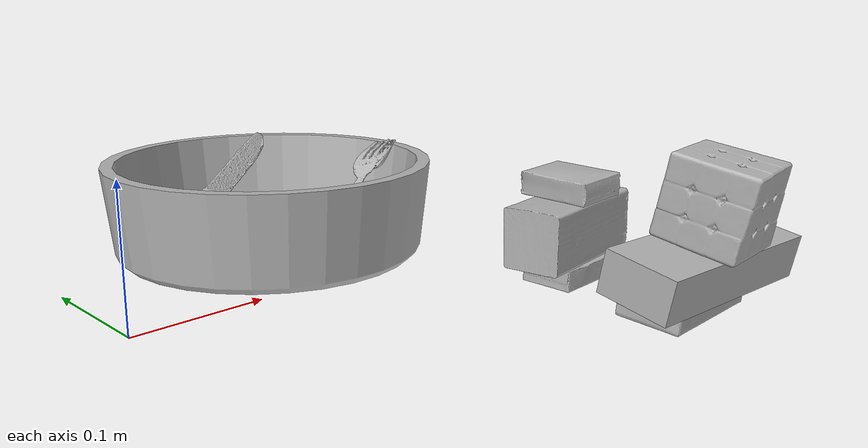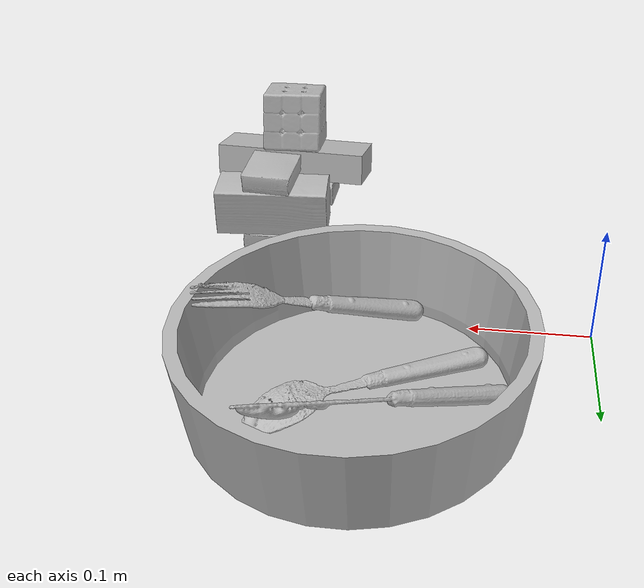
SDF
<?xml version="1.0" ?>
<sdf version="1.4">
  <world name="default">
    <light name="light1" type="point">
      <pose>0 0 1 0 0 0</pose>
      <diffuse>3 3 3 1</diffuse>
      <specular>3 3 3 1</specular>
    </light>
    <light name="light2" type="point">
      <pose>0 0.5 2 0 0 0</pose>
      <diffuse>1 1 1 1</diffuse>
      <specular>1 1 1 1</specular>
    </light>
    <light name="light3" type="point">
      <pose>0 0.5 2 0 0 0</pose>
      <diffuse>3 3 3 1</diffuse>
      <specular>3 3 3 1</specular>
    </light>
    <scene>
      <ambient>0.7 0.7 0.7</ambient>
    </scene>
    <model name="box11">
      <link name="link_box11">
        <collision name="default">
          <geometry>
            <mesh>
              <uri>model://cracker_box/collision_meshes/collision.obj</uri>
              <scale>0.25 0.25 0.25</scale>
            </mesh>
          </geometry>
          <surface>
            <friction>
              <ode>
                <mu>0.5</mu>
                <mu2>0.5</mu2>
              </ode>
            </friction>
          </surface>
        </collision>
        <visual name="default">
          <geometry>
            <mesh>
              <uri>model://cracker_box/visual_meshes/visual.dae</uri>
              <scale>0.25 0.25 0.25</scale>
            </mesh>
          </geometry>
        </visual>
        <inertial>
          <mass>0.04448898881673813</mass>
          <pose>0.00023660270380787551 6.358561950037256e-05 -0.000425738311605528 -0.00031620780372907927 -0.011106488668730609 0.002546795468482302</pose>
          <inertia>
            <ixx>7.0725087e-06</ixx>
            <iyy>1.1678099e-05</iyy>
            <izz>1.666572e-05</izz>
            <ixy>0</ixy>
            <ixz>0</ixz>
            <iyz>0</iyz>
          </inertia>
        </inertial>
      </link>
      <pose>0.28993144631385803 -0.11982575058937073 0.009121435694396496 -0.011962920095356235 -0.007375113182440322 0.0002992505632947396</pose>
    </model>
    <model name="box12">
      <link name="link_box12">
        <collision name="default">
          <geometry>
            <mesh>
              <uri>model://wood_block/collision_meshes/collision.obj</uri>
              <scale>0.5 0.5 0.5</scale>
            </mesh>
          </geometry>
          <surface>
            <friction>
              <ode>
                <mu>0.5</mu>
                <mu2>0.5</mu2>
              </ode>
            </friction>
          </surface>
        </collision>
        <visual name="default">
          <geometry>
            <mesh>
              <uri>model://wood_block/visual_meshes/visual.dae</uri>
              <scale>0.5 0.5 0.5</scale>
            </mesh>
          </geometry>
        </visual>
        <inertial>
          <mass>0.30308207869529724</mass>
          <pose>-2.906657982748584e-06 -0.000285404734313488 0.00013204291462898254 -0.05220975528484064 -0.0051926956083073895 -0.006861380255216688</pose>
          <inertia>
            <ixx>0.00010139242</ixx>
            <iyy>0.00032029866</iyy>
            <izz>0.0003191006</izz>
            <ixy>0</ixy>
            <ixz>0</ixz>
            <iyz>0</iyz>
          </inertia>
        </inertial>
      </link>
      <pose>0.2894980311393738 -0.11894428730010986 0.04052327945828438 -0.016948510660147912 -0.015242115023337739 0.09401947828345163</pose>
    </model>
    <model name="box13">
      <link name="link_box13">
        <collision name="default">
          <geometry>
            <mesh>
              <uri>model://pudding_box/collision_meshes/collision.obj</uri>
              <scale>0.5 0.5 0.5</scale>
            </mesh>
          </geometry>
          <surface>
            <friction>
              <ode>
                <mu>0.5</mu>
                <mu2>0.5</mu2>
              </ode>
            </friction>
          </surface>
        </collision>
        <visual name="default">
          <geometry>
            <mesh>
              <uri>model://pudding_box/visual_meshes/visual.dae</uri>
              <scale>0.5 0.5 0.5</scale>
            </mesh>
          </geometry>
        </visual>
        <inertial>
          <mass>0.06630203872919083</mass>
          <pose>0.00024474109522998333 0.00040339428232982755 -0.00025944141088984907 0.0052131027026664865 -0.006603797821229493 0.02007983447369903</pose>
          <inertia>
            <ixx>1.873776e-05</ixx>
            <iyy>1.2606899e-05</iyy>
            <izz>2.7671198e-05</izz>
            <ixy>0</ixy>
            <ixz>0</ixz>
            <iyz>0</iyz>
          </inertia>
        </inertial>
      </link>
      <pose>0.289121150970459 -0.1192665621638298 0.07319314777851105 0.0073982078584991316 -0.03387582343738378 -0.002491313739355502</pose>
    </model>
    <model name="box21">
      <link name="link_box21">
        <collision name="default">
          <geometry>
            <mesh>
              <uri>model://sugar_box/collision_meshes/collision.obj</uri>
              <scale>0.5 0.5 0.5</scale>
            </mesh>
          </geometry>
          <surface>
            <friction>
              <ode>
                <mu>0.5</mu>
                <mu2>0.5</mu2>
              </ode>
            </friction>
          </surface>
        </collision>
        <visual name="default">
          <geometry>
            <mesh>
              <uri>model://sugar_box/visual_meshes/visual.dae</uri>
              <scale>0.5 0.5 0.5</scale>
            </mesh>
          </geometry>
        </visual>
        <inertial>
          <mass>0.09398066252470016</mass>
          <pose>0.0005171863595023751 1.924554817378521e-05 -0.00018182402709499002 -0.00040462650409139634 0.0010506636387973133 0.002615378555960767</pose>
          <inertia>
            <ixx>1.9576108e-05</ixx>
            <iyy>6.3274e-05</iyy>
            <izz>7.574653e-05</izz>
            <ixy>0</ixy>
            <ixz>0</ixz>
            <iyz>0</iyz>
          </inertia>
        </inertial>
      </link>
      <pose>0.2896305024623871 -0.21077100932598114 0.011812245473265648 0.06421611401122428 -0.010095444265202855 -0.002090429474219297</pose>
    </model>
    <model name="box22">
      <link name="link_box22">
        <collision name="default">
          <geometry>
            <mesh>
              <uri>model://jenga/collision_meshes/collision.obj</uri>
              <scale>1.0 1.0 1.0</scale>
            </mesh>
          </geometry>
          <surface>
            <friction>
              <ode>
                <mu>0.5</mu>
                <mu2>0.5</mu2>
              </ode>
            </friction>
          </surface>
        </collision>
        <visual name="default">
          <geometry>
            <mesh>
              <uri>model://jenga/visual_meshes/visual.dae</uri>
              <scale>1.0 1.0 1.0</scale>
            </mesh>
          </geometry>
        </visual>
        <inertial>
          <mass>0.2620435655117035</mass>
          <pose>-2.5028555228345795e-07 -0.0001025000965455547 -4.092339804628864e-05 0.0 -7.342154049184251e-07 0.0</pose>
          <inertia>
            <ixx>7.251381e-05</ixx>
            <iyy>0.0004913516</iyy>
            <izz>0.00052455964</izz>
            <ixy>0</ixy>
            <ixz>0</ixz>
            <iyz>0</iyz>
          </inertia>
        </inertial>
      </link>
      <pose>0.2894708514213562 -0.22385655343532562 0.03689831495285034 0.1740307287072224 0.0012622480811259166 -0.06972479855324898</pose>
    </model>
    <model name="box23">
      <link name="link_box23">
        <collision name="default">
          <geometry>
            <mesh>
              <uri>model://rubiks_cube/collision_meshes/collision.obj</uri>
              <scale>1.0 1.0 1.0</scale>
            </mesh>
          </geometry>
          <surface>
            <friction>
              <ode>
                <mu>0.5</mu>
                <mu2>0.5</mu2>
              </ode>
            </friction>
          </surface>
        </collision>
        <visual name="default">
          <geometry>
            <mesh>
              <uri>model://rubiks_cube/visual_meshes/visual.dae</uri>
              <scale>1.0 1.0 1.0</scale>
            </mesh>
          </geometry>
        </visual>
        <inertial>
          <mass>0.1897622048854828</mass>
          <pose>2.6721043468569405e-05 5.256967051536776e-05 -7.264316082000732e-06 -0.054673156626660294 -0.09814014504853939 -0.034453657529750985</pose>
          <inertia>
            <ixx>0.00010485636</ixx>
            <iyy>0.00010436737</iyy>
            <izz>0.000105725274</izz>
            <ixy>0</ixy>
            <ixz>0</ixz>
            <iyz>0</iyz>
          </inertia>
        </inertial>
      </link>
      <pose>0.28939154744148254 -0.23135416209697723 0.07993116229772568 0.17224396168731607 -0.02507492576970014 0.08044906538537436</pose>
    </model>
    <model name="plate1">
      <link name="link_plate1">
        <collision name="default">
          <geometry>
            <mesh>
              <uri>model://pan_tefal/collision_meshes/collision.obj</uri>
              <scale>1.0 1.0 1.0</scale>
            </mesh>
          </geometry>
          <surface>
            <friction>
              <ode>
                <mu>0.5</mu>
                <mu2>0.5</mu2>
              </ode>
            </friction>
          </surface>
        </collision>
        <visual name="default">
          <geometry>
            <mesh>
              <uri>model://pan_tefal/visual_meshes/visual.dae</uri>
              <scale>1.0 1.0 1.0</scale>
            </mesh>
          </geometry>
        </visual>
        <inertial>
          <mass>0.8768928050994873</mass>
          <pose>-0.00018002584693022072 3.279091833974235e-05 -0.008514934219419956 0.0008190272128915226 -0.0003301349770144462 -0.3318573305948388</pose>
          <inertia>
            <ixx>0.0060531492</ixx>
            <iyy>0.006092174</iyy>
            <izz>0.011142679</izz>
            <ixy>0</ixy>
            <ixz>0</ixz>
            <iyz>0</iyz>
          </inertia>
        </inertial>
      </link>
      <pose>0.1799999624490738 0.10000008344650269 0.03805001080036163 -1.70475666574327e-08 -4.035245611803098e-08 -1.8388499853757922e-11</pose>
    </model>
    <model name="silverware1">
      <link name="link_silverware1">
        <collision name="default">
          <geometry>
            <mesh>
              <uri>model://spoon/collision_meshes/collision.obj</uri>
              <scale>1.0 1.0 1.0</scale>
            </mesh>
          </geometry>
          <surface>
            <friction>
              <ode>
                <mu>0.5</mu>
                <mu2>0.5</mu2>
              </ode>
            </friction>
          </surface>
        </collision>
        <visual name="default">
          <geometry>
            <mesh>
              <uri>model://spoon/visual_meshes/visual.dae</uri>
              <scale>1.0 1.0 1.0</scale>
            </mesh>
          </geometry>
        </visual>
        <inertial>
          <mass>0.030811671167612076</mass>
          <pose>-0.005526314955204725 -0.0016034170985221863 -0.0007271655485965312 0.03521832474385929 -0.03906585488360169 0.0061506134218646934</pose>
          <inertia>
            <ixx>1.713795e-06</ixx>
            <iyy>0.000117237374</iyy>
            <izz>0.00011808256</izz>
            <ixy>0</ixy>
            <ixz>0</ixz>
            <iyz>0</iyz>
          </inertia>
        </inertial>
      </link>
      <pose>0.17152151465415955 0.09857234358787537 0.017720330506563187 3.1070561122415223 -0.062081747512521226 0.5292374708207943</pose>
    </model>
    <model name="silverware2">
      <link name="link_silverware2">
        <collision name="default">
          <geometry>
            <mesh>
              <uri>model://fork/collision_meshes/collision.obj</uri>
              <scale>1.0 1.0 1.0</scale>
            </mesh>
          </geometry>
          <surface>
            <friction>
              <ode>
                <mu>0.5</mu>
                <mu2>0.5</mu2>
              </ode>
            </friction>
          </surface>
        </collision>
        <visual name="default">
          <geometry>
            <mesh>
              <uri>model://fork/visual_meshes/visual.dae</uri>
              <scale>1.0 1.0 1.0</scale>
            </mesh>
          </geometry>
        </visual>
        <inertial>
          <mass>0.016358599066734314</mass>
          <pose>-0.029570044949650764 0.00046588238910771906 0.0003218862693756819 -0.013550710307666105 -0.010977838412833367 0.014453905587424366</pose>
          <inertia>
            <ixx>5.7346136e-07</ixx>
            <iyy>4.270759e-05</iyy>
            <izz>4.29641e-05</izz>
            <ixy>0</ixy>
            <ixz>0</ixz>
            <iyz>0</iyz>
          </inertia>
        </inertial>
      </link>
      <pose>0.21943321824073792 0.04307720065116882 0.047590505331754684 2.9634061480606326 -0.3685831990937409 0.5226465147095646</pose>
    </model>
    <model name="silverware3">
      <link name="link_silverware3">
        <collision name="default">
          <geometry>
            <mesh>
              <uri>model://knife/collision_meshes/collision.obj</uri>
              <scale>1.0 1.0 1.0</scale>
            </mesh>
          </geometry>
          <surface>
            <friction>
              <ode>
                <mu>0.5</mu>
                <mu2>0.5</mu2>
              </ode>
            </friction>
          </surface>
        </collision>
        <visual name="default">
          <geometry>
            <mesh>
              <uri>model://knife/visual_meshes/visual.dae</uri>
              <scale>1.0 1.0 1.0</scale>
            </mesh>
          </geometry>
        </visual>
        <inertial>
          <mass>0.02715744450688362</mass>
          <pose>-0.023785259574651718 0.0015275124460458755 5.062024501967244e-05 0.07304743927496513 0.01724841757037888 -0.007409820832494391</pose>
          <inertia>
            <ixx>7.708383e-07</ixx>
            <iyy>0.00010433449</iyy>
            <izz>0.00010458276</izz>
            <ixy>0</ixy>
            <ixz>0</ixz>
            <iyz>0</iyz>
          </inertia>
        </inertial>
      </link>
      <pose>0.15628871321678162 0.14528295397758484 0.043690863996744156 0.6356402169744916 -0.2977135509144875 0.5394767668241043</pose>
    </model>
  </world>
</sdf>
